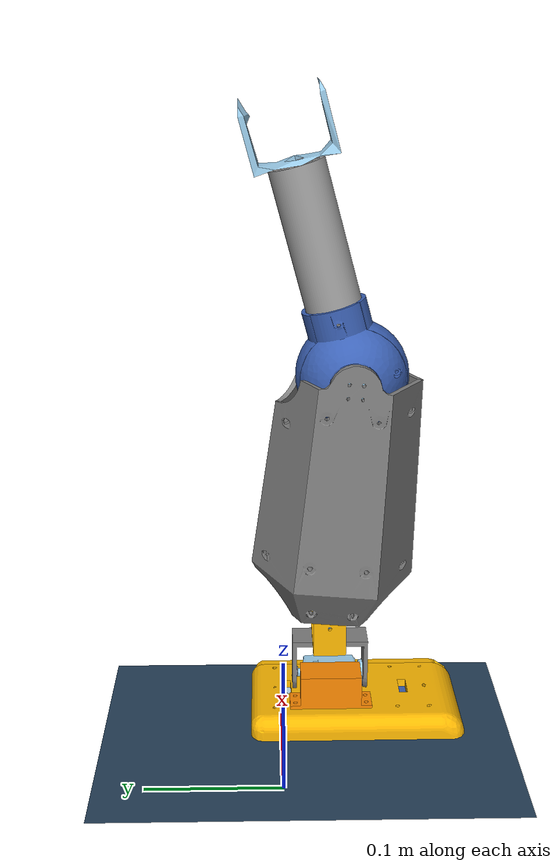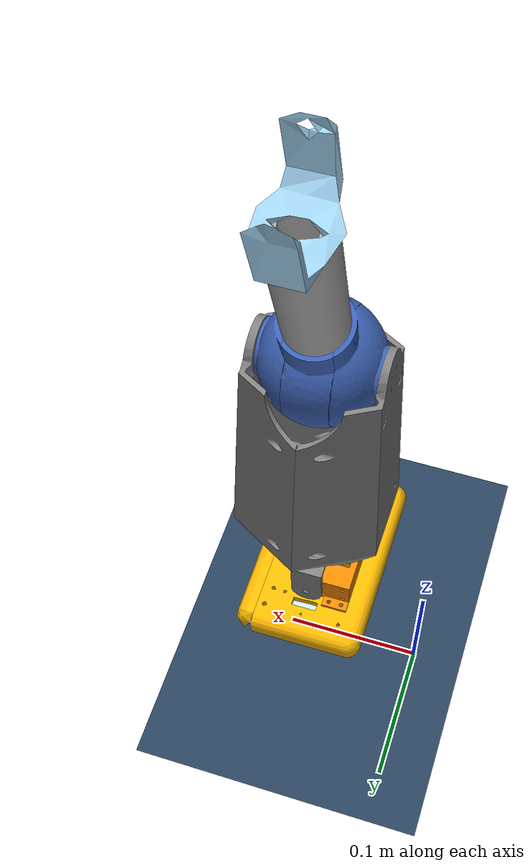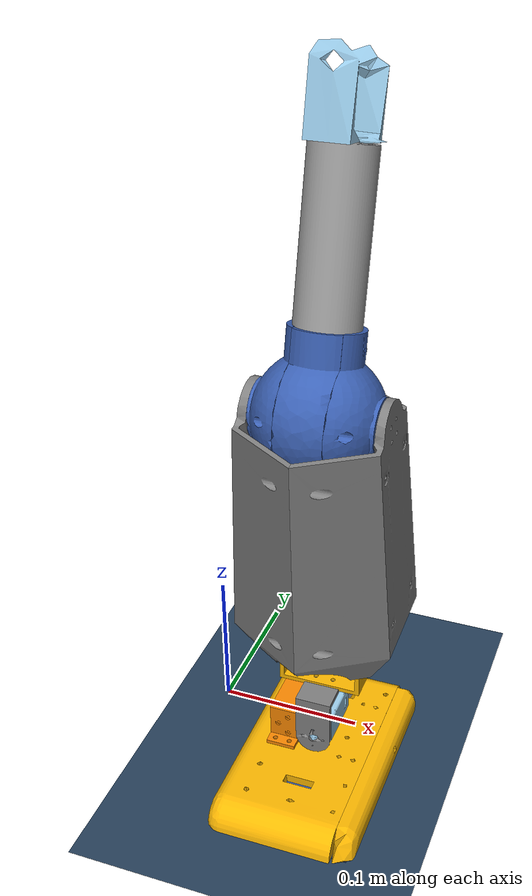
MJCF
<mujoco model="scene">
    <include file="wild_robot_dev.xml" />

    <visual>
        <headlight diffuse="0.6 0.6 0.6" ambient="0.3 0.3 0.3" specular="0 0 0" />
        <rgba haze="0.15 0.25 0.35 1" />
        <global azimuth="160" elevation="-20" />
    </visual>

    <asset>
        <texture type="skybox" builtin="gradient" rgb1="0.3 0.5 0.7" rgb2="0 0 0" width="512" height="3072" />
        <texture type="2d" name="groundplane" builtin="checker" mark="edge" rgb1="0.2 0.3 0.4" rgb2="0.1 0.2 0.3" markrgb="0.8 0.8 0.8" width="300" height="300" />
        <material name="groundplane" texture="groundplane" texuniform="true" texrepeat="5 5" reflectance="0.2" />
    </asset>

    <worldbody>
        <light pos="0 0 3.5" dir="0 0 -1" directional="true" />
        <geom name="floor" size="0 0 0.05" pos="0 0 0" type="plane" material="groundplane" />
    </worldbody>

    <keyframe>
        <key name="home" qpos="5.88886e-05 -0.000883554 0.491586 1 0.000872081 1.53494e-05 -0.00017207 0.00110294 -0.00251964 0.000272391" />
    </keyframe>

</mujoco>

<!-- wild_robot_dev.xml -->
<mujoco model="wild_robot_dev">
  <compiler angle="radian" meshdir="assets" autolimits="true" />
  <default>
    <default class="wild_robot_dev">
      <joint frictionloss="0.1" armature="0.005" />
      <position kp="50" dampratio="1" />
      <default class="visual">
        <geom type="mesh" contype="0" conaffinity="0" group="2" />
      </default>
      <default class="collision">
        <geom group="3" />
      </default>
    </default>
  </default>
  <sensor>
    <gyro site="left_leg_imu" name="left_leg_gyro" />
    <accelerometer site="left_leg_imu" name="left_leg_accelerometer" />
    <framelinvel objtype="site" objname="left_leg_imu" name="left_leg_global_linvel" />
    <frameangvel objtype="site" objname="left_leg_imu" name="left_leg_global_angvel" />
  </sensor>
  <default>
    <default class="lobotServo">
      <geom contype="0" conaffinity="0" />
      <joint damping="0.60" frictionloss="0.052" armature="0.028" />
      <position kp="17.8" kv="0.0" forcerange="-3.35 3.35" />
    </default>
    <default class="backlash">
      <joint damping="0.01" frictionloss="0" armature="0.01" limited="true" range="-0.008726646259971648 0.008726646259971648" />
    </default>
  </default>
  <worldbody>
    <body name="base" pos="0 0 0.5">
      <freejoint name="floating_base" />
      <body name="upper_leg" pos="0 0 0" quat="1 0 0 0" childclass="wild_robot_dev">
        <inertial pos="0.0892971 -0.0414913 -0.187195" mass="0.236565" fullinertia="0.000987093 0.000921381 0.000184098 -2.2435e-06 -8.41451e-06 -0.000215242" />
        <geom type="mesh" class="visual" pos="-0.00487454 -0.000234867 -0.0334489" quat="0.991368 -0.131105 -0.000578019 0.000742846" mesh="up_leg_servo_connect" material="up_leg_servo_connect_material" />
        <geom type="mesh" class="collision" pos="-0.00487454 -0.000234867 -0.0334489" quat="0.991368 -0.131105 -0.000578019 0.000742846" mesh="up_leg_servo_connect" material="up_leg_servo_connect_material" />
        <geom type="mesh" class="visual" pos="-0.00467507 -0.00013204 -0.0330621" quat="0.991368 -0.131102 -0.00057749 0.000746839" mesh="knee_ball_left" material="knee_ball_left_material" />
        <geom type="mesh" class="collision" pos="-0.00467507 -0.00013204 -0.0330621" quat="0.991368 -0.131102 -0.00057749 0.000746839" mesh="knee_ball_left" material="knee_ball_left_material" />
        <geom type="mesh" class="visual" pos="-0.00487481 -0.000182878 -0.0332558" quat="0.991368 -0.131105 -0.000578019 0.000742846" mesh="knee_ball_mid" material="knee_ball_mid_material" />
        <geom type="mesh" class="collision" pos="-0.00487481 -0.000182878 -0.0332558" quat="0.991368 -0.131105 -0.000578019 0.000742846" mesh="knee_ball_mid" material="knee_ball_mid_material" />
        <geom type="mesh" class="visual" pos="-0.00487454 -0.000234867 -0.0334489" quat="0.991368 -0.131105 -0.000578019 0.000742846" mesh="up_leg" material="up_leg_material" />
        <geom type="mesh" class="collision" pos="-0.00487454 -0.000234867 -0.0334489" quat="0.991368 -0.131105 -0.000578019 0.000742846" mesh="up_leg" material="up_leg_material" />
        <geom type="mesh" class="visual" pos="0.115832 -0.109265 -0.20963" quat="0.429712 -0.560598 -0.430553 0.561874" mesh="htd_45h_1circle" material="htd_45h_1circle_material" />
        <geom type="mesh" class="visual" pos="-0.00507521 -3.28009e-05 -0.0330894" quat="0.99132 -0.131466 -0.000574 0.000775074" mesh="knee_ball_right" material="knee_ball_right_material" />
        <geom type="mesh" class="collision" pos="-0.00507521 -3.28009e-05 -0.0330894" quat="0.99132 -0.131466 -0.000574 0.000775074" mesh="knee_ball_right" material="knee_ball_right_material" />
        <site group="3" name="left_leg_imu" pos="0.090358 -0.0453695 -0.20069" quat="0.701528 -0.0922963 -0.0931137 -0.700478" />
        <body name="lower_leg" pos="0.0635333 -0.0501252 -0.219124" quat="0.477819 0.520419 0.478215 0.521693">
          <joint axis="0 0 1" name="left_knee" type="hinge" range="-0.3490658503988667 1.22173047639603" class="lobotServo" />
          <inertial pos="-0.000521354 -0.101401 0.0270617" mass="0.380663" fullinertia="0.00177714 0.000669988 0.00168908 1.88914e-05 3.0835e-08 -3.5834e-05" />
          <geom type="mesh" class="visual" pos="-1.99623e-15 0.192752 -0.0677579" quat="0.5 -0.5 -0.5 -0.5" mesh="low_leg_right" material="low_leg_right_material" />
          <geom type="mesh" class="collision" pos="-1.99623e-15 0.192752 -0.0677579" quat="0.5 -0.5 -0.5 -0.5" mesh="low_leg_right" material="low_leg_right_material" />
          <geom type="mesh" class="visual" pos="-3.39572e-16 0.192752 -0.0677579" quat="0.5 -0.5 -0.5 -0.5" mesh="low_leg_left" material="low_leg_left_material" />
          <geom type="mesh" class="collision" pos="-3.39572e-16 0.192752 -0.0677579" quat="0.5 -0.5 -0.5 -0.5" mesh="low_leg_left" material="low_leg_left_material" />
          <geom type="mesh" class="visual" pos="0.0596393 -0.173769 0.0526109" quat="1.31858e-14 -1.45413e-15 -1 0.000164358" mesh="htd_45h_1circle" material="htd_45h_1circle_material" />
          <body name="left_ankle" pos="-4.74705e-05 -0.179984 0.000442075" quat="0.999048 0.000564473 0.000438249 -0.0436191">
            <joint axis="0 0 1" name="left_ankle" type="hinge" range="-0.4363323486443026 0.610865202552295" class="lobotServo" />
            <inertial pos="-0.000778386 -0.0291765 0.0259275" mass="0.0230191" fullinertia="1.34186e-05 1.32703e-05 1.41853e-05 -1.80568e-07 1.56329e-08 2.24395e-07" />
            <geom type="mesh" class="visual" pos="1.16931e-16 -0.0722 0.0268" quat="0.5 -0.5 -0.5 -0.5" mesh="servo_bracket_btm" material="servo_bracket_btm_material" />
            <geom type="mesh" class="collision" pos="1.16931e-16 -0.0722 0.0268" quat="0.5 -0.5 -0.5 -0.5" mesh="servo_bracket_btm" material="servo_bracket_btm_material" />
            <geom type="mesh" class="visual" pos="-7.42678e-18 -0.0732 0.0268" quat="0.5 -0.5 -0.5 -0.5" mesh="servo_bracket_top" material="servo_bracket_top_material" />
            <geom type="mesh" class="collision" pos="-7.42678e-18 -0.0732 0.0268" quat="0.5 -0.5 -0.5 -0.5" mesh="servo_bracket_top" material="servo_bracket_top_material" />
            <body name="left_foot" pos="-0.0268 -0.0594 0.0268" quat="0.499992 0.500008 0.499992 0.500008">
              <joint axis="0 0 1" name="left_foot" type="hinge" range="-0.34909746539659237 0.3490342354011394" class="lobotServo" />
              <inertial pos="-0.0183724 -0.00183883 0.00908575" mass="0.413618" fullinertia="0.00096407 0.00073874 0.0003209 1.74031e-05 -2.95872e-05 1.47775e-05" />
              <geom type="mesh" class="visual" pos="-0.0128254 0.000185294 0.0255108" quat="0.499502 0.500498 0.499915 0.500085" mesh="btm_servo_support" material="btm_servo_support_material" />
              <geom type="mesh" class="collision" pos="-0.0128254 0.000185294 0.0255108" quat="0.499502 0.500498 0.499915 0.500085" mesh="btm_servo_support" material="btm_servo_support_material" />
              <geom type="mesh" class="visual" pos="-0.0596436 -0.0062757 0.0510108" quat="0.00074741 -1 3.08837e-07 0.00041321" mesh="htd_45h_1circle" material="htd_45h_1circle_material" />
              <geom type="mesh" class="visual" pos="-0.0125253 0.0011852 0.0255946" quat="0.499502 0.500498 0.499915 0.500085" mesh="foot_btm_back" material="foot_btm_back_material" />
              <geom type="mesh" class="collision" pos="-0.0125253 0.0011852 0.0255946" quat="0.499502 0.500498 0.499915 0.500085" mesh="foot_btm_back" material="foot_btm_back_material" name="left_foot_btm_back" />
              <geom type="mesh" class="visual" pos="-0.0128254 0.000185294 0.0255108" quat="0.499502 0.500498 0.499915 0.500085" mesh="foot_side" material="foot_side_material" />
              <geom type="mesh" class="collision" pos="-0.0128254 0.000185294 0.0255108" quat="0.499502 0.500498 0.499915 0.500085" mesh="foot_side" material="foot_side_material" />
              <geom type="mesh" class="visual" pos="-0.0128254 0.000185294 0.0255108" quat="0.499502 0.500498 0.499915 0.500085" mesh="foot_main" material="foot_main_material" />
              <geom type="mesh" class="collision" pos="-0.0128254 0.000185294 0.0255108" quat="0.499502 0.500498 0.499915 0.500085" mesh="foot_main" material="foot_main_material" />
              <geom type="mesh" class="visual" pos="-0.0125255 0.00118539 0.0254289" quat="0.499502 0.500498 0.499915 0.500085" mesh="foot_btm_front" material="foot_btm_front_material" />
              <geom type="mesh" class="collision" pos="-0.0125255 0.00118539 0.0254289" quat="0.499502 0.500498 0.499915 0.500085" mesh="foot_btm_front" material="foot_btm_front_material" name="left_foot_btm_front" />
            </body>
          </body>
        </body>
      </body>
    </body>
  </worldbody>
  <asset>
    <mesh file="foot_main.stl" />
    <mesh file="knee_ball_mid.stl" />
    <mesh file="htd_45h_1circle.stl" />
    <mesh file="up_leg.stl" />
    <mesh file="up_leg_servo_connect.stl" />
    <mesh file="low_leg_left.stl" />
    <mesh file="foot_side.stl" />
    <mesh file="foot_btm_front.stl" />
    <mesh file="knee_ball_left.stl" />
    <mesh file="foot_btm_back.stl" />
    <mesh file="servo_bracket_top.stl" />
    <mesh file="btm_servo_support.stl" />
    <mesh file="low_leg_right.stl" />
    <mesh file="servo_bracket_btm.stl" />
    <mesh file="knee_ball_right.stl" />
    <material name="up_leg_servo_connect_material" rgba="0.615686 0.811765 0.929412 1" />
    <material name="knee_ball_left_material" rgba="0.231373 0.380392 0.705882 1" />
    <material name="knee_ball_mid_material" rgba="0.231373 0.380392 0.705882 1" />
    <material name="up_leg_material" rgba="0.647059 0.647059 0.647059 1" />
    <material name="htd_45h_1circle_material" rgba="0.615686 0.811765 0.929412 1" />
    <material name="knee_ball_right_material" rgba="0.231373 0.380392 0.705882 1" />
    <material name="low_leg_right_material" rgba="0.498039 0.498039 0.498039 1" />
    <material name="low_leg_left_material" rgba="0.498039 0.498039 0.498039 1" />
    <material name="servo_bracket_btm_material" rgba="0.498039 0.498039 0.498039 1" />
    <material name="servo_bracket_top_material" rgba="0.980392 0.713725 0.00392157 1" />
    <material name="btm_servo_support_material" rgba="0.972549 0.529412 0.00392157 1" />
    <material name="foot_btm_back_material" rgba="0.768627 0.886275 0.952941 1" />
    <material name="foot_side_material" rgba="0.980392 0.713725 0.00392157 1" />
    <material name="foot_main_material" rgba="0.980392 0.713725 0.00392157 1" />
    <material name="foot_btm_front_material" rgba="0.231373 0.380392 0.705882 1" />
  </asset>
  <actuator>
    <position class="lobotServo" name="left_knee" joint="left_knee" inheritrange="1" />
    <position class="lobotServo" name="left_ankle" joint="left_ankle" inheritrange="1" />
    <position class="lobotServo" name="left_foot" joint="left_foot" inheritrange="1" />
  </actuator>
  <equality />
</mujoco>
